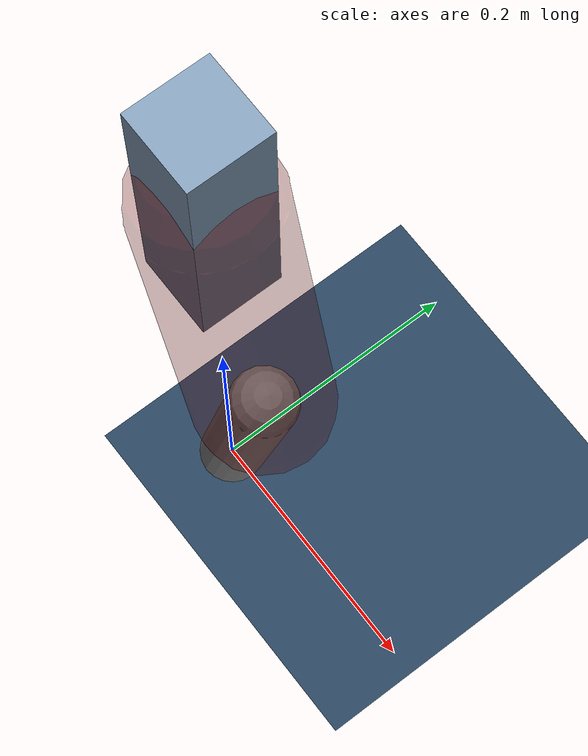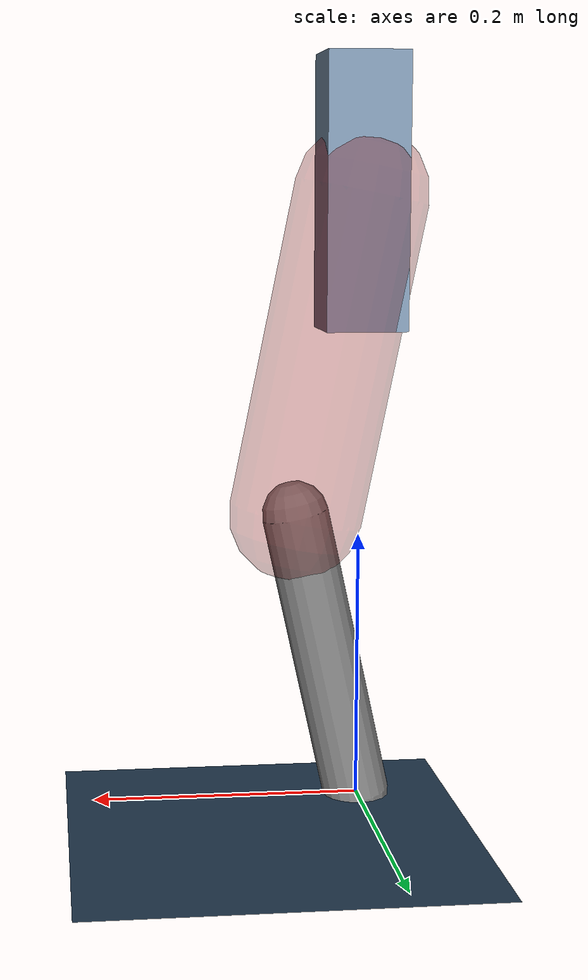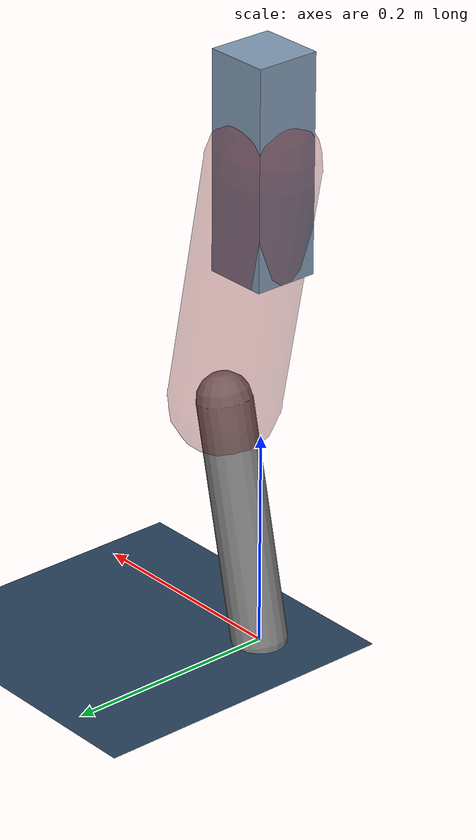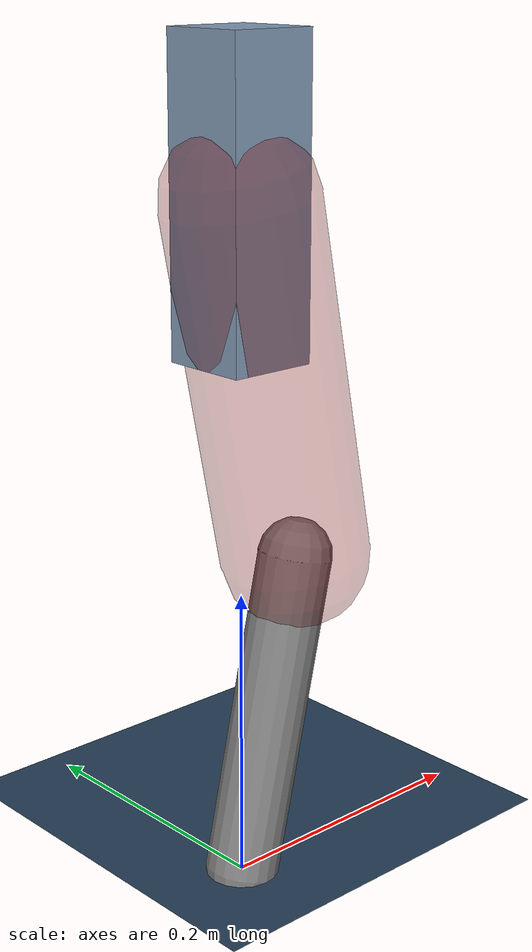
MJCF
<mujoco model="Hopper2D">
	<compiler inertiafromgeom="true" angle="radian" />
	<option timestep="0.001" integrator="implicit" cone="elliptic" solver="Newton" tolerance="1e-10" />

	<default>
		<geom contype="1" conaffinity="1" condim="3" friction="2 0.005 0.0001" solref="0.005 1" />
		<joint limited="true" damping="0.1" />
	</default>

	<asset>
		<texture name="skybox" type="skybox" builtin="gradient" rgb1=".4 .6 .8" rgb2="0 0 0" width="800" height="800" />
		<texture name="grid" type="2d" builtin="checker" rgb1=".1 .2 .3" rgb2=".2 .3 .4" width="300" height="300" mark="edge" markrgb=".2 .3 .4" />
		<material name="ground" texture="grid" texrepeat="1 1" texuniform="true" reflectance="0.1" />
		<material name="leg" rgba="0.5 0.6 0.7 1" />
	</asset>

	<worldbody>

		<geom name="floor" type="plane" size="5 5 0.25" material="ground" />

		<light directional="false" diffuse="0.8 0.8 0.8" specular="0.3 0.3 0.3" pos="0 0 2" dir="0 0 -1" />
		<light mode="targetbodycom" target="base" directional="false" diffuse="0.8 0.8 0.8" specular="0.3 0.3 0.3" pos="0 0 2" dir="0 0 -1" />

		<camera name="fixed" pos="0 -2 1" xyaxes="1 0 0 0 0 1" />
		<camera name="tracking" mode="trackcom" pos="0 -3 1" />

		<body name="root" pos="0 0 0.4543086759254885">
			<joint name="slide_x" type="slide" axis="1 0 0" range="-100 100" />
			<joint name="slide_z" type="slide" axis="0 0 1" range="0 10" />

			<body name="base" pos="0 0 0">
				<geom name="torso" type="box" size="0.03 0.03 0.1" mass="2.651" material="leg" />

				<body name="link1" pos="0 0 0" euler="0 1.3718785385927528 0">
					<joint type="hinge" axis="0 -1 0" pos="0 0 0" name="hinge1" limited="true" range="-3.14 3.14" stiffness="0" damping="0.1" />
					<geom name="thigh" type="capsule" fromto="0 0 0 0.24227045085392956 0 0" size="0.05" rgba="0.5 0 0 0.3" mass="0.8364031722202169" />

					<body name="link2" pos="0.24227045085392956 0 0" euler="0 0.41623914253743527 0">
						<joint type="hinge" axis="0 -1 0" pos="0 0 0" name="hinge2" limited="true" range="-3.14 3.14" stiffness="0" damping="0.1" />
						<geom name="shank" type="capsule" fromto="0 0 0 0.22203822507155896 0 0" size="0.025" mass="0.4193344025644031" />

					</body>
				</body>
			</body>
		</body>
	</worldbody>

	<actuator>
		<motor name="torque1" joint="hinge1" ctrlrange="-99.91479818906208 99.91479818906208" ctrllimited="true" gear="1" />
		<motor name="torque2" joint="hinge2" ctrlrange="-79.56305803917998 79.56305803917998" ctrllimited="true" gear="1" />
	</actuator>
</mujoco>
